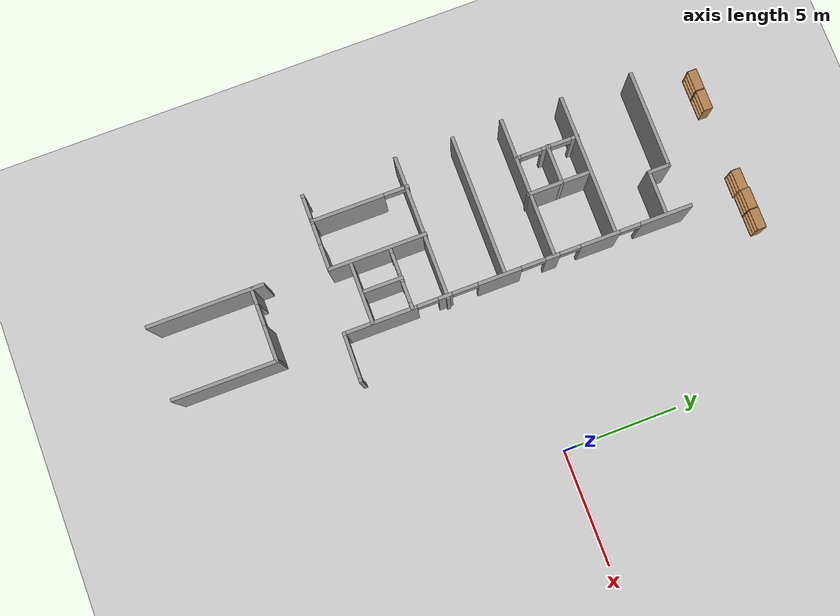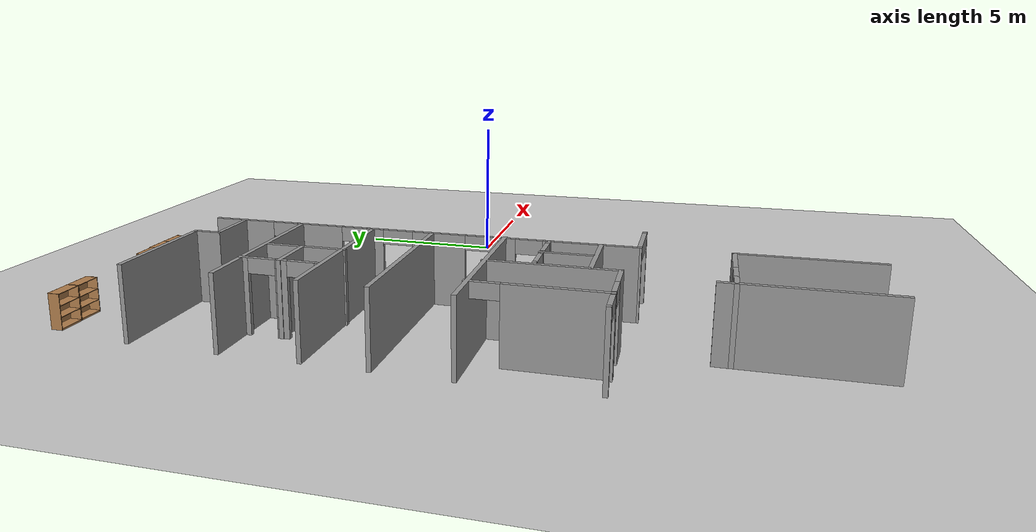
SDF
<sdf version="1.4">
 <world name="default">
  <model name="ground_plane">
   <static>1</static>
   <link name="link">
    <collision name="collision">
     <geometry><plane><normal>0 0 1</normal><size>100 100</size></plane></geometry>
    </collision>
    <visual name="visual">
     <cast_shadows>0</cast_shadows>
     <geometry><plane><normal>0 0 1</normal><size>100 100</size></plane></geometry>
     <material>
      <script><uri>file://media/materials/scripts/gazebo.material</uri><name>Gazebo/Grey</name></script>
     </material>
    </visual>
    <velocity_decay><linear>0</linear><angular>0</angular></velocity_decay>
   </link>
  </model>
  <model name="Shannon">
   <pose>-0.0406 0.68299 0 0 -0 0</pose>
   <link name="Wall_103">
    <pose>-12.639 -7.09751 0 0 -0 3.14159</pose>
    <visual name="Wall_103_Visual_0">
     <pose>-0.521613 0 1.25 0 -0 0</pose>
     <geometry><box><size>0.206775 0.15 2.5</size></box></geometry>
     <material>
      <script><uri>file://media/materials/scripts/gazebo.material</uri><name>Gazebo/Grey</name></script>
      <ambient>1 1 1 1</ambient>
     </material>
    </visual>
    <collision name="Wall_103_Collision_0">
     <geometry><box><size>0.206775 0.15 2.5</size></box></geometry>
     <pose>-0.521613 0 1.25 0 -0 0</pose>
    </collision>
    <visual name="Wall_103_Visual_1">
     <pose>0.553387 0 1.25 0 -0 0</pose>
     <geometry><box><size>0.143225 0.15 2.5</size></box></geometry>
     <material>
      <script><uri>file://media/materials/scripts/gazebo.material</uri><name>Gazebo/Grey</name></script>
      <ambient>1 1 1 1</ambient>
     </material>
    </visual>
    <collision name="Wall_103_Collision_1">
     <geometry><box><size>0.143225 0.15 2.5</size></box></geometry>
     <pose>0.553387 0 1.25 0 -0 0</pose>
    </collision>
    <visual name="Wall_103_Visual_2">
     <pose>0.031775 0 2.25 0 -0 0</pose>
     <geometry><box><size>0.9 0.15 0.5</size></box></geometry>
     <material>
      <script><uri>file://media/materials/scripts/gazebo.material</uri><name>Gazebo/Grey</name></script>
      <ambient>1 1 1 1</ambient>
     </material>
    </visual>
    <collision name="Wall_103_Collision_2">
     <geometry><box><size>0.9 0.15 0.5</size></box></geometry>
     <pose>0.031775 0 2.25 0 -0 0</pose>
    </collision>
    <velocity_decay><linear>0</linear><angular>0</angular></velocity_decay>
   </link>
   <link name="Wall_113">
    <pose>-6.33435 -7.42718 0 0 -0 3.12996</pose>
    <visual name="Wall_113_Visual_0">
     <pose>-0.982605 0 1.25 0 -0 0</pose>
     <geometry><box><size>0.174156 0.15 2.5</size></box></geometry>
     <material>
      <script><uri>file://media/materials/scripts/gazebo.material</uri><name>Gazebo/Grey</name></script>
      <ambient>1 1 1 1</ambient>
     </material>
    </visual>
    <collision name="Wall_113_Collision_0">
     <geometry><box><size>0.174156 0.15 2.5</size></box></geometry>
     <pose>-0.982605 0 1.25 0 -0 0</pose>
    </collision>
    <visual name="Wall_113_Visual_1">
     <pose>0.989375 0 1.25 0 -0 0</pose>
     <geometry><box><size>0.160617 0.15 2.5</size></box></geometry>
     <material>
      <script><uri>file://media/materials/scripts/gazebo.material</uri><name>Gazebo/Grey</name></script>
      <ambient>1 1 1 1</ambient>
     </material>
    </visual>
    <collision name="Wall_113_Collision_1">
     <geometry><box><size>0.160617 0.15 2.5</size></box></geometry>
     <pose>0.989375 0 1.25 0 -0 0</pose>
    </collision>
    <visual name="Wall_113_Visual_2">
     <pose>0.00677 0 2.25 0 -0 0</pose>
     <geometry><box><size>1.80459 0.15 0.5</size></box></geometry>
     <material>
      <script><uri>file://media/materials/scripts/gazebo.material</uri><name>Gazebo/Grey</name></script>
      <ambient>1 1 1 1</ambient>
     </material>
    </visual>
    <collision name="Wall_113_Collision_2">
     <geometry><box><size>1.80459 0.15 0.5</size></box></geometry>
     <pose>0.00677 0 2.25 0 -0 0</pose>
    </collision>
    <velocity_decay><linear>0</linear><angular>0</angular></velocity_decay>
   </link>
   <link name="Wall_24">
    <collision name="Wall_24_Collision">
     <geometry><box><size>5 0.15 2.5</size></box></geometry>
     <pose>0 0 1.25 0 -0 0</pose>
    </collision>
    <visual name="Wall_24_Visual">
     <pose>0 0 1.25 0 -0 0</pose>
     <geometry><box><size>5 0.15 2.5</size></box></geometry>
     <material>
      <script><uri>file://media/materials/scripts/gazebo.material</uri><name>Gazebo/Grey</name></script>
      <ambient>1 1 1 1</ambient>
     </material>
    </visual>
    <pose>-10.3358 -12.2303 0 0 -0 -1.5708</pose>
    <velocity_decay><linear>0</linear><angular>0</angular></velocity_decay>
   </link>
   <link name="Wall_26">
    <pose>-8.78595 -10.2837 0 0 -0 0</pose>
    <visual name="Wall_26_Visual_0">
     <pose>-1.2458 0 1.25 0 -0 0</pose>
     <geometry><box><size>0.7584 0.15 2.5</size></box></geometry>
     <material>
      <script><uri>file://media/materials/scripts/gazebo.material</uri><name>Gazebo/Grey</name></script>
      <ambient>1 1 1 1</ambient>
     </material>
    </visual>
    <collision name="Wall_26_Collision_0">
     <geometry><box><size>0.7584 0.15 2.5</size></box></geometry>
     <pose>-1.2458 0 1.25 0 -0 0</pose>
    </collision>
    <visual name="Wall_26_Visual_1">
     <pose>0.8292 0 1.25 0 -0 0</pose>
     <geometry><box><size>1.5916 0.15 2.5</size></box></geometry>
     <material>
      <script><uri>file://media/materials/scripts/gazebo.material</uri><name>Gazebo/Grey</name></script>
      <ambient>1 1 1 1</ambient>
     </material>
    </visual>
    <collision name="Wall_26_Collision_1">
     <geometry><box><size>1.5916 0.15 2.5</size></box></geometry>
     <pose>0.8292 0 1.25 0 -0 0</pose>
    </collision>
    <visual name="Wall_26_Visual_2">
     <pose>-0.4166 0 2.25 0 -0 0</pose>
     <geometry><box><size>0.9 0.15 0.5</size></box></geometry>
     <material>
      <script><uri>file://media/materials/scripts/gazebo.material</uri><name>Gazebo/Grey</name></script>
      <ambient>1 1 1 1</ambient>
     </material>
    </visual>
    <collision name="Wall_26_Collision_2">
     <geometry><box><size>0.9 0.15 0.5</size></box></geometry>
     <pose>-0.4166 0 2.25 0 -0 0</pose>
    </collision>
    <velocity_decay><linear>0</linear><angular>0</angular></velocity_decay>
   </link>
   <link name="Wall_27">
    <collision name="Wall_27_Collision">
     <geometry><box><size>4.5 0.15 2.5</size></box></geometry>
     <pose>0 0 1.25 0 -0 0</pose>
    </collision>
    <visual name="Wall_27_Visual">
     <pose>0 0 1.25 0 -0 0</pose>
     <geometry><box><size>4.5 0.15 2.5</size></box></geometry>
     <material>
      <script><uri>file://media/materials/scripts/gazebo.material</uri><name>Gazebo/Grey</name></script>
      <ambient>1 1 1 1</ambient>
     </material>
    </visual>
    <pose>-7.23595 -12.4587 0 0 -0 -1.5708</pose>
    <velocity_decay><linear>0</linear><angular>0</angular></velocity_decay>
   </link>
   <link name="Wall_41">
    <collision name="Wall_41_Collision">
     <geometry><box><size>4.25 0.15 2.5</size></box></geometry>
     <pose>0 0 1.25 0 -0 0</pose>
    </collision>
    <visual name="Wall_41_Visual">
     <pose>0 0 1.25 0 -0 0</pose>
     <geometry><box><size>4.25 0.15 2.5</size></box></geometry>
     <material>
      <script><uri>file://media/materials/scripts/gazebo.material</uri><name>Gazebo/Grey</name></script>
      <ambient>1 1 1 1</ambient>
     </material>
    </visual>
    <pose>-11.2467 7.24934 0 0 -0 0</pose>
    <velocity_decay><linear>0</linear><angular>0</angular></velocity_decay>
   </link>
   <link name="Wall_42">
    <collision name="Wall_42_Collision">
     <geometry><box><size>1 0.15 2.5</size></box></geometry>
     <pose>0 0 1.25 0 -0 0</pose>
    </collision>
    <visual name="Wall_42_Visual">
     <pose>0 0 1.25 0 -0 0</pose>
     <geometry><box><size>1 0.15 2.5</size></box></geometry>
     <material>
      <script><uri>file://media/materials/scripts/gazebo.material</uri><name>Gazebo/Grey</name></script>
      <ambient>1 1 1 1</ambient>
     </material>
    </visual>
    <pose>-9.19666 6.82435 0 0 -0 -1.5708</pose>
    <velocity_decay><linear>0</linear><angular>0</angular></velocity_decay>
   </link>
   <link name="Wall_43">
    <collision name="Wall_43_Collision">
     <geometry><box><size>2 0.15 2.5</size></box></geometry>
     <pose>0 0 1.25 0 -0 0</pose>
    </collision>
    <visual name="Wall_43_Visual">
     <pose>0 0 1.25 0 -0 0</pose>
     <geometry><box><size>2 0.15 2.5</size></box></geometry>
     <material>
      <script><uri>file://media/materials/scripts/gazebo.material</uri><name>Gazebo/Grey</name></script>
      <ambient>1 1 1 1</ambient>
     </material>
    </visual>
    <pose>-8.27166 6.39934 0 0 -0 0</pose>
    <velocity_decay><linear>0</linear><angular>0</angular></velocity_decay>
   </link>
   <link name="Wall_47">
    <pose>-7.32897 0.009389 0 0 -0 -1.5708</pose>
    <visual name="Wall_47_Visual_0">
     <pose>-6.3818 0 1.25 0 -0 0</pose>
     <geometry><box><size>2.2364 0.15 2.5</size></box></geometry>
     <material>
      <script><uri>file://media/materials/scripts/gazebo.material</uri><name>Gazebo/Grey</name></script>
      <ambient>1 1 1 1</ambient>
     </material>
    </visual>
    <collision name="Wall_47_Collision_0">
     <geometry><box><size>2.2364 0.15 2.5</size></box></geometry>
     <pose>-6.3818 0 1.25 0 -0 0</pose>
    </collision>
    <visual name="Wall_47_Visual_1">
     <pose>-3.51711 0 1.25 0 -0 0</pose>
     <geometry><box><size>1.69298 0.15 2.5</size></box></geometry>
     <material>
      <script><uri>file://media/materials/scripts/gazebo.material</uri><name>Gazebo/Grey</name></script>
      <ambient>1 1 1 1</ambient>
     </material>
    </visual>
    <collision name="Wall_47_Collision_1">
     <geometry><box><size>1.69298 0.15 2.5</size></box></geometry>
     <pose>-3.51711 0 1.25 0 -0 0</pose>
    </collision>
    <visual name="Wall_47_Visual_2">
     <pose>-1.46309 0 1.25 0 -0 0</pose>
     <geometry><box><size>0.615055 0.15 2.5</size></box></geometry>
     <material>
      <script><uri>file://media/materials/scripts/gazebo.material</uri><name>Gazebo/Grey</name></script>
      <ambient>1 1 1 1</ambient>
     </material>
    </visual>
    <collision name="Wall_47_Collision_2">
     <geometry><box><size>0.615055 0.15 2.5</size></box></geometry>
     <pose>-1.46309 0 1.25 0 -0 0</pose>
    </collision>
    <visual name="Wall_47_Visual_3">
     <pose>0.809496 0 1.25 0 -0 0</pose>
     <geometry><box><size>1.85254 0.15 2.5</size></box></geometry>
     <material>
      <script><uri>file://media/materials/scripts/gazebo.material</uri><name>Gazebo/Grey</name></script>
      <ambient>1 1 1 1</ambient>
     </material>
    </visual>
    <collision name="Wall_47_Collision_3">
     <geometry><box><size>1.85254 0.15 2.5</size></box></geometry>
     <pose>0.809496 0 1.25 0 -0 0</pose>
    </collision>
    <visual name="Wall_47_Visual_4">
     <pose>3.13991 0 1.25 0 -0 0</pose>
     <geometry><box><size>0.591924 0.15 2.5</size></box></geometry>
     <material>
      <script><uri>file://media/materials/scripts/gazebo.material</uri><name>Gazebo/Grey</name></script>
      <ambient>1 1 1 1</ambient>
     </material>
    </visual>
    <collision name="Wall_47_Collision_4">
     <geometry><box><size>0.591924 0.15 2.5</size></box></geometry>
     <pose>3.13991 0 1.25 0 -0 0</pose>
    </collision>
    <visual name="Wall_47_Visual_5">
     <pose>5.91793 0 1.25 0 -0 0</pose>
     <geometry><box><size>3.16413 0.15 2.5</size></box></geometry>
     <material>
      <script><uri>file://media/materials/scripts/gazebo.material</uri><name>Gazebo/Grey</name></script>
      <ambient>1 1 1 1</ambient>
     </material>
    </visual>
    <collision name="Wall_47_Collision_5">
     <geometry><box><size>3.16413 0.15 2.5</size></box></geometry>
     <pose>5.91793 0 1.25 0 -0 0</pose>
    </collision>
    <visual name="Wall_47_Visual_6">
     <pose>-4.8136 0 2.25 0 -0 0</pose>
     <geometry><box><size>0.9 0.15 0.5</size></box></geometry>
     <material>
      <script><uri>file://media/materials/scripts/gazebo.material</uri><name>Gazebo/Grey</name></script>
      <ambient>1 1 1 1</ambient>
     </material>
    </visual>
    <collision name="Wall_47_Collision_6">
     <geometry><box><size>0.9 0.15 0.5</size></box></geometry>
     <pose>-4.8136 0 2.25 0 -0 0</pose>
    </collision>
    <visual name="Wall_47_Visual_7">
     <pose>-2.22061 0 2.25 0 -0 0</pose>
     <geometry><box><size>0.9 0.15 0.5</size></box></geometry>
     <material>
      <script><uri>file://media/materials/scripts/gazebo.material</uri><name>Gazebo/Grey</name></script>
      <ambient>1 1 1 1</ambient>
     </material>
    </visual>
    <collision name="Wall_47_Collision_7">
     <geometry><box><size>0.9 0.15 0.5</size></box></geometry>
     <pose>-2.22061 0 2.25 0 -0 0</pose>
    </collision>
    <visual name="Wall_47_Visual_8">
     <pose>-0.636167 0 2.25 0 -0 0</pose>
     <geometry><box><size>1.03878 0.15 0.5</size></box></geometry>
     <material>
      <script><uri>file://media/materials/scripts/gazebo.material</uri><name>Gazebo/Grey</name></script>
      <ambient>1 1 1 1</ambient>
     </material>
    </visual>
    <collision name="Wall_47_Collision_8">
     <geometry><box><size>1.03878 0.15 0.5</size></box></geometry>
     <pose>-0.636167 0 2.25 0 -0 0</pose>
    </collision>
    <visual name="Wall_47_Visual_9">
     <pose>2.28986 0 2.25 0 -0 0</pose>
     <geometry><box><size>1.10817 0.15 0.5</size></box></geometry>
     <material>
      <script><uri>file://media/materials/scripts/gazebo.material</uri><name>Gazebo/Grey</name></script>
      <ambient>1 1 1 1</ambient>
     </material>
    </visual>
    <collision name="Wall_47_Collision_9">
     <geometry><box><size>1.10817 0.15 0.5</size></box></geometry>
     <pose>2.28986 0 2.25 0 -0 0</pose>
    </collision>
    <visual name="Wall_47_Visual_10">
     <pose>3.88587 0 2.25 0 -0 0</pose>
     <geometry><box><size>0.9 0.15 0.5</size></box></geometry>
     <material>
      <script><uri>file://media/materials/scripts/gazebo.material</uri><name>Gazebo/Grey</name></script>
      <ambient>1 1 1 1</ambient>
     </material>
    </visual>
    <collision name="Wall_47_Collision_10">
     <geometry><box><size>0.9 0.15 0.5</size></box></geometry>
     <pose>3.88587 0 2.25 0 -0 0</pose>
    </collision>
    <velocity_decay><linear>0</linear><angular>0</angular></velocity_decay>
   </link>
   <link name="Wall_49">
    <collision name="Wall_49_Collision">
     <geometry><box><size>6 0.15 2.5</size></box></geometry>
     <pose>0 0 1.25 0 -0 0</pose>
    </collision>
    <visual name="Wall_49_Visual">
     <pose>0 0 1.25 0 -0 0</pose>
     <geometry><box><size>6 0.15 2.5</size></box></geometry>
     <material>
      <script><uri>file://media/materials/scripts/gazebo.material</uri><name>Gazebo/Grey</name></script>
      <ambient>1 1 1 1</ambient>
     </material>
    </visual>
    <pose>-10.3948 4.1961 0 0 -0 0</pose>
    <velocity_decay><linear>0</linear><angular>0</angular></velocity_decay>
   </link>
   <link name="Wall_51">
    <collision name="Wall_51_Collision">
     <geometry><box><size>6 0.15 2.5</size></box></geometry>
     <pose>0 0 1.25 0 -0 0</pose>
    </collision>
    <visual name="Wall_51_Visual">
     <pose>0 0 1.25 0 -0 0</pose>
     <geometry><box><size>6 0.15 2.5</size></box></geometry>
     <material>
      <script><uri>file://media/materials/scripts/gazebo.material</uri><name>Gazebo/Grey</name></script>
      <ambient>1 1 1 1</ambient>
     </material>
    </visual>
    <pose>-10.3717 1.55922 0 0 -0 0</pose>
    <velocity_decay><linear>0</linear><angular>0</angular></velocity_decay>
   </link>
   <link name="Wall_53">
    <collision name="Wall_53_Collision">
     <geometry><box><size>6 0.15 2.5</size></box></geometry>
     <pose>0 0 1.25 0 -0 0</pose>
    </collision>
    <visual name="Wall_53_Visual">
     <pose>0 0 1.25 0 -0 0</pose>
     <geometry><box><size>6 0.15 2.5</size></box></geometry>
     <material>
      <script><uri>file://media/materials/scripts/gazebo.material</uri><name>Gazebo/Grey</name></script>
      <ambient>1 1 1 1</ambient>
     </material>
    </visual>
    <pose>-10.3948 -0.568801 0 0 -0 0</pose>
    <velocity_decay><linear>0</linear><angular>0</angular></velocity_decay>
   </link>
   <link name="Wall_55">
    <collision name="Wall_55_Collision">
     <geometry><box><size>6.25 0.15 2.5</size></box></geometry>
     <pose>0 0 1.25 0 -0 0</pose>
    </collision>
    <visual name="Wall_55_Visual">
     <pose>0 0 1.25 0 -0 0</pose>
     <geometry><box><size>6.25 0.15 2.5</size></box></geometry>
     <material>
      <script><uri>file://media/materials/scripts/gazebo.material</uri><name>Gazebo/Grey</name></script>
      <ambient>1 1 1 1</ambient>
     </material>
    </visual>
    <pose>-10.2929 -3.04378 0 0 -0 0</pose>
    <velocity_decay><linear>0</linear><angular>0</angular></velocity_decay>
   </link>
   <link name="Wall_57">
    <collision name="Wall_57_Collision">
     <geometry><box><size>4.25 0.15 2.5</size></box></geometry>
     <pose>0 0 1.25 0 -0 0</pose>
    </collision>
    <visual name="Wall_57_Visual">
     <pose>0 0 1.25 0 -0 0</pose>
     <geometry><box><size>4.25 0.15 2.5</size></box></geometry>
     <material>
      <script><uri>file://media/materials/scripts/gazebo.material</uri><name>Gazebo/Grey</name></script>
      <ambient>1 1 1 1</ambient>
     </material>
    </visual>
    <pose>-9.98899 -5.04751 0 0 -0 -1.5708</pose>
    <velocity_decay><linear>0</linear><angular>0</angular></velocity_decay>
   </link>
   <link name="Wall_58">
    <pose>-11.039 -7.09751 0 0 -0 3.14159</pose>
    <visual name="Wall_58_Visual_0">
     <pose>-0.54919 0 1.25 0 -0 0</pose>
     <geometry><box><size>1.15162 0.15 2.5</size></box></geometry>
     <material>
      <script><uri>file://media/materials/scripts/gazebo.material</uri><name>Gazebo/Grey</name></script>
      <ambient>1 1 1 1</ambient>
     </material>
    </visual>
    <collision name="Wall_58_Collision_0">
     <geometry><box><size>1.15162 0.15 2.5</size></box></geometry>
     <pose>-0.54919 0 1.25 0 -0 0</pose>
    </collision>
    <visual name="Wall_58_Visual_1">
     <pose>1.02581 0 1.25 0 -0 0</pose>
     <geometry><box><size>0.19838 0.15 2.5</size></box></geometry>
     <material>
      <script><uri>file://media/materials/scripts/gazebo.material</uri><name>Gazebo/Grey</name></script>
      <ambient>1 1 1 1</ambient>
     </material>
    </visual>
    <collision name="Wall_58_Collision_1">
     <geometry><box><size>0.19838 0.15 2.5</size></box></geometry>
     <pose>1.02581 0 1.25 0 -0 0</pose>
    </collision>
    <visual name="Wall_58_Visual_2">
     <pose>0.47662 0 2.25 0 -0 0</pose>
     <geometry><box><size>0.9 0.15 0.5</size></box></geometry>
     <material>
      <script><uri>file://media/materials/scripts/gazebo.material</uri><name>Gazebo/Grey</name></script>
      <ambient>1 1 1 1</ambient>
     </material>
    </visual>
    <collision name="Wall_58_Collision_2">
     <geometry><box><size>0.9 0.15 0.5</size></box></geometry>
     <pose>0.47662 0 2.25 0 -0 0</pose>
    </collision>
    <velocity_decay><linear>0</linear><angular>0</angular></velocity_decay>
   </link>
   <link name="Wall_59">
    <pose>-12.089 -5.04751 0 0 -0 1.5708</pose>
    <visual name="Wall_59_Visual_0">
     <pose>-0.540067 0 1.25 0 -0 0</pose>
     <geometry><box><size>3.16987 0.15 2.5</size></box></geometry>
     <material>
      <script><uri>file://media/materials/scripts/gazebo.material</uri><name>Gazebo/Grey</name></script>
      <ambient>1 1 1 1</ambient>
     </material>
    </visual>
    <collision name="Wall_59_Collision_0">
     <geometry><box><size>3.16987 0.15 2.5</size></box></geometry>
     <pose>-0.540067 0 1.25 0 -0 0</pose>
    </collision>
    <visual name="Wall_59_Visual_1">
     <pose>2.03493 0 1.25 0 -0 0</pose>
     <geometry><box><size>0.180134 0.15 2.5</size></box></geometry>
     <material>
      <script><uri>file://media/materials/scripts/gazebo.material</uri><name>Gazebo/Grey</name></script>
      <ambient>1 1 1 1</ambient>
     </material>
    </visual>
    <collision name="Wall_59_Collision_1">
     <geometry><box><size>0.180134 0.15 2.5</size></box></geometry>
     <pose>2.03493 0 1.25 0 -0 0</pose>
    </collision>
    <visual name="Wall_59_Visual_2">
     <pose>1.49487 0 2.25 0 -0 0</pose>
     <geometry><box><size>0.9 0.15 0.5</size></box></geometry>
     <material>
      <script><uri>file://media/materials/scripts/gazebo.material</uri><name>Gazebo/Grey</name></script>
      <ambient>1 1 1 1</ambient>
     </material>
    </visual>
    <collision name="Wall_59_Collision_2">
     <geometry><box><size>0.9 0.15 0.5</size></box></geometry>
     <pose>1.49487 0 2.25 0 -0 0</pose>
    </collision>
    <velocity_decay><linear>0</linear><angular>0</angular></velocity_decay>
   </link>
   <link name="Wall_61">
    <collision name="Wall_61_Collision">
     <geometry><box><size>2.75 0.15 2.5</size></box></geometry>
     <pose>0 0 1.25 0 -0 0</pose>
    </collision>
    <visual name="Wall_61_Visual">
     <pose>0 0 1.25 0 -0 0</pose>
     <geometry><box><size>2.75 0.15 2.5</size></box></geometry>
     <material>
      <script><uri>file://media/materials/scripts/gazebo.material</uri><name>Gazebo/Grey</name></script>
      <ambient>1 1 1 1</ambient>
     </material>
    </visual>
    <pose>-8.66586 -6.21267 0 0 -0 0</pose>
    <velocity_decay><linear>0</linear><angular>0</angular></velocity_decay>
   </link>
   <link name="Wall_63">
    <pose>-8.66586 -4.52414 0 0 -0 0</pose>
    <visual name="Wall_63_Visual_0">
     <pose>-1.21554 0 1.25 0 -0 0</pose>
     <geometry><box><size>0.318918 0.15 2.5</size></box></geometry>
     <material>
      <script><uri>file://media/materials/scripts/gazebo.material</uri><name>Gazebo/Grey</name></script>
      <ambient>1 1 1 1</ambient>
     </material>
    </visual>
    <collision name="Wall_63_Collision_0">
     <geometry><box><size>0.318918 0.15 2.5</size></box></geometry>
     <pose>-1.21554 0 1.25 0 -0 0</pose>
    </collision>
    <visual name="Wall_63_Visual_1">
     <pose>0.018445 0 1.25 0 -0 0</pose>
     <geometry><box><size>0.349053 0.15 2.5</size></box></geometry>
     <material>
      <script><uri>file://media/materials/scripts/gazebo.material</uri><name>Gazebo/Grey</name></script>
      <ambient>1 1 1 1</ambient>
     </material>
    </visual>
    <collision name="Wall_63_Collision_1">
     <geometry><box><size>0.349053 0.15 2.5</size></box></geometry>
     <pose>0.018445 0 1.25 0 -0 0</pose>
    </collision>
    <visual name="Wall_63_Visual_2">
     <pose>1.23399 0 1.25 0 -0 0</pose>
     <geometry><box><size>0.282029 0.15 2.5</size></box></geometry>
     <material>
      <script><uri>file://media/materials/scripts/gazebo.material</uri><name>Gazebo/Grey</name></script>
      <ambient>1 1 1 1</ambient>
     </material>
    </visual>
    <collision name="Wall_63_Collision_2">
     <geometry><box><size>0.282029 0.15 2.5</size></box></geometry>
     <pose>1.23399 0 1.25 0 -0 0</pose>
    </collision>
    <visual name="Wall_63_Visual_3">
     <pose>-0.606082 0 2.25 0 -0 0</pose>
     <geometry><box><size>0.9 0.15 0.5</size></box></geometry>
     <material>
      <script><uri>file://media/materials/scripts/gazebo.material</uri><name>Gazebo/Grey</name></script>
      <ambient>1 1 1 1</ambient>
     </material>
    </visual>
    <collision name="Wall_63_Collision_3">
     <geometry><box><size>0.9 0.15 0.5</size></box></geometry>
     <pose>-0.606082 0 2.25 0 -0 0</pose>
    </collision>
    <visual name="Wall_63_Visual_4">
     <pose>0.642971 0 2.25 0 -0 0</pose>
     <geometry><box><size>0.9 0.15 0.5</size></box></geometry>
     <material>
      <script><uri>file://media/materials/scripts/gazebo.material</uri><name>Gazebo/Grey</name></script>
      <ambient>1 1 1 1</ambient>
     </material>
    </visual>
    <collision name="Wall_63_Collision_4">
     <geometry><box><size>0.9 0.15 0.5</size></box></geometry>
     <pose>0.642971 0 2.25 0 -0 0</pose>
    </collision>
    <velocity_decay><linear>0</linear><angular>0</angular></velocity_decay>
   </link>
   <link name="Wall_65">
    <collision name="Wall_65_Collision">
     <geometry><box><size>1.75 0.15 2.5</size></box></geometry>
     <pose>0 0 1.25 0 -0 0</pose>
    </collision>
    <visual name="Wall_65_Visual">
     <pose>0 0 1.25 0 -0 0</pose>
     <geometry><box><size>1.75 0.15 2.5</size></box></geometry>
     <material>
      <script><uri>file://media/materials/scripts/gazebo.material</uri><name>Gazebo/Grey</name></script>
      <ambient>1 1 1 1</ambient>
     </material>
    </visual>
    <pose>-8.64741 -5.301 0 0 -0 -1.5708</pose>
    <velocity_decay><linear>0</linear><angular>0</angular></velocity_decay>
   </link>
   <link name="Wall_67">
    <pose>-11.6313 2.91924 0 0 -0 -1.5708</pose>
    <visual name="Wall_67_Visual_0">
     <pose>-1.20398 0 1.25 0 -0 0</pose>
     <geometry><box><size>0.342049 0.15 2.5</size></box></geometry>
     <material>
      <script><uri>file://media/materials/scripts/gazebo.material</uri><name>Gazebo/Grey</name></script>
      <ambient>1 1 1 1</ambient>
     </material>
    </visual>
    <collision name="Wall_67_Collision_0">
     <geometry><box><size>0.342049 0.15 2.5</size></box></geometry>
     <pose>-1.20398 0 1.25 0 -0 0</pose>
    </collision>
    <visual name="Wall_67_Visual_1">
     <pose>0.064706 0 1.25 0 -0 0</pose>
     <geometry><box><size>0.395314 0.15 2.5</size></box></geometry>
     <material>
      <script><uri>file://media/materials/scripts/gazebo.material</uri><name>Gazebo/Grey</name></script>
      <ambient>1 1 1 1</ambient>
     </material>
    </visual>
    <collision name="Wall_67_Collision_1">
     <geometry><box><size>0.395314 0.15 2.5</size></box></geometry>
     <pose>0.064706 0 1.25 0 -0 0</pose>
    </collision>
    <visual name="Wall_67_Visual_2">
     <pose>1.26868 0 1.25 0 -0 0</pose>
     <geometry><box><size>0.212637 0.15 2.5</size></box></geometry>
     <material>
      <script><uri>file://media/materials/scripts/gazebo.material</uri><name>Gazebo/Grey</name></script>
      <ambient>1 1 1 1</ambient>
     </material>
    </visual>
    <collision name="Wall_67_Collision_2">
     <geometry><box><size>0.212637 0.15 2.5</size></box></geometry>
     <pose>1.26868 0 1.25 0 -0 0</pose>
    </collision>
    <visual name="Wall_67_Visual_3">
     <pose>-0.582951 0 2.25 0 -0 0</pose>
     <geometry><box><size>0.9 0.15 0.5</size></box></geometry>
     <material>
      <script><uri>file://media/materials/scripts/gazebo.material</uri><name>Gazebo/Grey</name></script>
      <ambient>1 1 1 1</ambient>
     </material>
    </visual>
    <collision name="Wall_67_Collision_3">
     <geometry><box><size>0.9 0.15 0.5</size></box></geometry>
     <pose>-0.582951 0 2.25 0 -0 0</pose>
    </collision>
    <visual name="Wall_67_Visual_4">
     <pose>0.712363 0 2.25 0 -0 0</pose>
     <geometry><box><size>0.9 0.15 0.5</size></box></geometry>
     <material>
      <script><uri>file://media/materials/scripts/gazebo.material</uri><name>Gazebo/Grey</name></script>
      <ambient>1 1 1 1</ambient>
     </material>
    </visual>
    <collision name="Wall_67_Collision_4">
     <geometry><box><size>0.9 0.15 0.5</size></box></geometry>
     <pose>0.712363 0 2.25 0 -0 0</pose>
    </collision>
    <velocity_decay><linear>0</linear><angular>0</angular></velocity_decay>
   </link>
   <link name="Wall_69">
    <collision name="Wall_69_Collision">
     <geometry><box><size>1.75 0.15 2.5</size></box></geometry>
     <pose>0 0 1.25 0 -0 0</pose>
    </collision>
    <visual name="Wall_69_Visual">
     <pose>0 0 1.25 0 -0 0</pose>
     <geometry><box><size>1.75 0.15 2.5</size></box></geometry>
     <material>
      <script><uri>file://media/materials/scripts/gazebo.material</uri><name>Gazebo/Grey</name></script>
      <ambient>1 1 1 1</ambient>
     </material>
    </visual>
    <pose>-10.8544 2.92392 0 0 -0 0</pose>
    <velocity_decay><linear>0</linear><angular>0</angular></velocity_decay>
   </link>
   <link name="Wall_71">
    <collision name="Wall_71_Collision">
     <geometry><box><size>2.75 0.15 2.5</size></box></geometry>
     <pose>0 0 1.25 0 -0 0</pose>
    </collision>
    <visual name="Wall_71_Visual">
     <pose>0 0 1.25 0 -0 0</pose>
     <geometry><box><size>2.75 0.15 2.5</size></box></geometry>
     <material>
      <script><uri>file://media/materials/scripts/gazebo.material</uri><name>Gazebo/Grey</name></script>
      <ambient>1 1 1 1</ambient>
     </material>
    </visual>
    <pose>-10.0584 2.80358 0 0 -0 -1.5708</pose>
    <velocity_decay><linear>0</linear><angular>0</angular></velocity_decay>
   </link>
   <static>1</static>
  </model>
  <model name="bookshelf_5">
   <static>1</static>
   <link name="link">
    <inertial><mass>1</mass></inertial>
    <collision name="back">
     <pose>0 0.005 0.6 0 -0 0</pose>
     <geometry><box><size>0.9 0.01 1.2</size></box></geometry>
    </collision>
    <visual name="visual1">
     <pose>0 0.005 0.6 0 -0 0</pose>
     <geometry><box><size>0.9 0.01 1.2</size></box></geometry>
     <material>
      <script><uri>file://media/materials/scripts/gazebo.material</uri><name>Gazebo/Wood</name></script>
     </material>
    </visual>
    <collision name="left_side">
     <pose>0.45 -0.195 0.6 0 -0 0</pose>
     <geometry><box><size>0.02 0.4 1.2</size></box></geometry>
    </collision>
    <visual name="visual2">
     <pose>0.45 -0.195 0.6 0 -0 0</pose>
     <geometry><box><size>0.02 0.4 1.2</size></box></geometry>
     <material>
      <script><uri>file://media/materials/scripts/gazebo.material</uri><name>Gazebo/Wood</name></script>
     </material>
    </visual>
    <collision name="right_side">
     <pose>-0.45 -0.195 0.6 0 -0 0</pose>
     <geometry><box><size>0.02 0.4 1.2</size></box></geometry>
    </collision>
    <visual name="visual3">
     <pose>-0.45 -0.195 0.6 0 -0 0</pose>
     <geometry><box><size>0.02 0.4 1.2</size></box></geometry>
     <material>
      <script><uri>file://media/materials/scripts/gazebo.material</uri><name>Gazebo/Wood</name></script>
     </material>
    </visual>
    <collision name="bottom">
     <pose>0 -0.195 0.03 0 -0 0</pose>
     <geometry><box><size>0.88 0.4 0.06</size></box></geometry>
    </collision>
    <visual name="visual4">
     <pose>0 -0.195 0.03 0 -0 0</pose>
     <geometry><box><size>0.88 0.4 0.06</size></box></geometry>
     <material>
      <script><uri>file://media/materials/scripts/gazebo.material</uri><name>Gazebo/Wood</name></script>
     </material>
    </visual>
    <collision name="top">
     <pose>0 -0.195 1.19 0 -0 0</pose>
     <geometry><box><size>0.88 0.4 0.02</size></box></geometry>
    </collision>
    <visual name="visual5">
     <pose>0 -0.195 1.19 0 -0 0</pose>
     <geometry><box><size>0.88 0.4 0.02</size></box></geometry>
     <material>
      <script><uri>file://media/materials/scripts/gazebo.material</uri><name>Gazebo/Wood</name></script>
     </material>
    </visual>
    <collision name="low_shelf">
     <pose>0 -0.195 0.43 0 -0 0</pose>
     <geometry><box><size>0.88 0.4 0.02</size></box></geometry>
    </collision>
    <visual name="visual6">
     <pose>0 -0.195 0.43 0 -0 0</pose>
     <geometry><box><size>0.88 0.4 0.02</size></box></geometry>
     <material>
      <script><uri>file://media/materials/scripts/gazebo.material</uri><name>Gazebo/Wood</name></script>
     </material>
    </visual>
    <collision name="high_shelf">
     <pose>0 -0.195 0.8 0 -0 0</pose>
     <geometry><box><size>0.88 0.4 0.02</size></box></geometry>
    </collision>
    <visual name="visual7">
     <pose>0 -0.195 0.8 0 -0 0</pose>
     <geometry><box><size>0.88 0.4 0.02</size></box></geometry>
     <material>
      <script><uri>file://media/materials/scripts/gazebo.material</uri><name>Gazebo/Wood</name></script>
     </material>
    </visual>
    <velocity_decay><linear>0</linear><angular>0</angular></velocity_decay>
   </link>
   <pose>-12.5379 10.9551 0 0 -0 0</pose>
  </model>
  <model name="bookshelf_6">
   <static>1</static>
   <link name="link">
    <inertial><mass>1</mass></inertial>
    <collision name="back">
     <pose>0 0.005 0.6 0 -0 0</pose>
     <geometry><box><size>0.9 0.01 1.2</size></box></geometry>
    </collision>
    <visual name="visual1">
     <pose>0 0.005 0.6 0 -0 0</pose>
     <geometry><box><size>0.9 0.01 1.2</size></box></geometry>
     <material>
      <script><uri>file://media/materials/scripts/gazebo.material</uri><name>Gazebo/Wood</name></script>
     </material>
    </visual>
    <collision name="left_side">
     <pose>0.45 -0.195 0.6 0 -0 0</pose>
     <geometry><box><size>0.02 0.4 1.2</size></box></geometry>
    </collision>
    <visual name="visual2">
     <pose>0.45 -0.195 0.6 0 -0 0</pose>
     <geometry><box><size>0.02 0.4 1.2</size></box></geometry>
     <material>
      <script><uri>file://media/materials/scripts/gazebo.material</uri><name>Gazebo/Wood</name></script>
     </material>
    </visual>
    <collision name="right_side">
     <pose>-0.45 -0.195 0.6 0 -0 0</pose>
     <geometry><box><size>0.02 0.4 1.2</size></box></geometry>
    </collision>
    <visual name="visual3">
     <pose>-0.45 -0.195 0.6 0 -0 0</pose>
     <geometry><box><size>0.02 0.4 1.2</size></box></geometry>
     <material>
      <script><uri>file://media/materials/scripts/gazebo.material</uri><name>Gazebo/Wood</name></script>
     </material>
    </visual>
    <collision name="bottom">
     <pose>0 -0.195 0.03 0 -0 0</pose>
     <geometry><box><size>0.88 0.4 0.06</size></box></geometry>
    </collision>
    <visual name="visual4">
     <pose>0 -0.195 0.03 0 -0 0</pose>
     <geometry><box><size>0.88 0.4 0.06</size></box></geometry>
     <material>
      <script><uri>file://media/materials/scripts/gazebo.material</uri><name>Gazebo/Wood</name></script>
     </material>
    </visual>
    <collision name="top">
     <pose>0 -0.195 1.19 0 -0 0</pose>
     <geometry><box><size>0.88 0.4 0.02</size></box></geometry>
    </collision>
    <visual name="visual5">
     <pose>0 -0.195 1.19 0 -0 0</pose>
     <geometry><box><size>0.88 0.4 0.02</size></box></geometry>
     <material>
      <script><uri>file://media/materials/scripts/gazebo.material</uri><name>Gazebo/Wood</name></script>
     </material>
    </visual>
    <collision name="low_shelf">
     <pose>0 -0.195 0.43 0 -0 0</pose>
     <geometry><box><size>0.88 0.4 0.02</size></box></geometry>
    </collision>
    <visual name="visual6">
     <pose>0 -0.195 0.43 0 -0 0</pose>
     <geometry><box><size>0.88 0.4 0.02</size></box></geometry>
     <material>
      <script><uri>file://media/materials/scripts/gazebo.material</uri><name>Gazebo/Wood</name></script>
     </material>
    </visual>
    <collision name="high_shelf">
     <pose>0 -0.195 0.8 0 -0 0</pose>
     <geometry><box><size>0.88 0.4 0.02</size></box></geometry>
    </collision>
    <visual name="visual7">
     <pose>0 -0.195 0.8 0 -0 0</pose>
     <geometry><box><size>0.88 0.4 0.02</size></box></geometry>
     <material>
      <script><uri>file://media/materials/scripts/gazebo.material</uri><name>Gazebo/Wood</name></script>
     </material>
    </visual>
    <velocity_decay><linear>0</linear><angular>0</angular></velocity_decay>
   </link>
   <pose>-11.605 10.9577 0 0 -0 0</pose>
  </model>
  <model name="bookshelf_7">
   <static>1</static>
   <link name="link">
    <inertial><mass>1</mass></inertial>
    <collision name="back">
     <pose>0 0.005 0.6 0 -0 0</pose>
     <geometry><box><size>0.9 0.01 1.2</size></box></geometry>
    </collision>
    <visual name="visual1">
     <pose>0 0.005 0.6 0 -0 0</pose>
     <geometry><box><size>0.9 0.01 1.2</size></box></geometry>
     <material>
      <script><uri>file://media/materials/scripts/gazebo.material</uri><name>Gazebo/Wood</name></script>
     </material>
    </visual>
    <collision name="left_side">
     <pose>0.45 -0.195 0.6 0 -0 0</pose>
     <geometry><box><size>0.02 0.4 1.2</size></box></geometry>
    </collision>
    <visual name="visual2">
     <pose>0.45 -0.195 0.6 0 -0 0</pose>
     <geometry><box><size>0.02 0.4 1.2</size></box></geometry>
     <material>
      <script><uri>file://media/materials/scripts/gazebo.material</uri><name>Gazebo/Wood</name></script>
     </material>
    </visual>
    <collision name="right_side">
     <pose>-0.45 -0.195 0.6 0 -0 0</pose>
     <geometry><box><size>0.02 0.4 1.2</size></box></geometry>
    </collision>
    <visual name="visual3">
     <pose>-0.45 -0.195 0.6 0 -0 0</pose>
     <geometry><box><size>0.02 0.4 1.2</size></box></geometry>
     <material>
      <script><uri>file://media/materials/scripts/gazebo.material</uri><name>Gazebo/Wood</name></script>
     </material>
    </visual>
    <collision name="bottom">
     <pose>0 -0.195 0.03 0 -0 0</pose>
     <geometry><box><size>0.88 0.4 0.06</size></box></geometry>
    </collision>
    <visual name="visual4">
     <pose>0 -0.195 0.03 0 -0 0</pose>
     <geometry><box><size>0.88 0.4 0.06</size></box></geometry>
     <material>
      <script><uri>file://media/materials/scripts/gazebo.material</uri><name>Gazebo/Wood</name></script>
     </material>
    </visual>
    <collision name="top">
     <pose>0 -0.195 1.19 0 -0 0</pose>
     <geometry><box><size>0.88 0.4 0.02</size></box></geometry>
    </collision>
    <visual name="visual5">
     <pose>0 -0.195 1.19 0 -0 0</pose>
     <geometry><box><size>0.88 0.4 0.02</size></box></geometry>
     <material>
      <script><uri>file://media/materials/scripts/gazebo.material</uri><name>Gazebo/Wood</name></script>
     </material>
    </visual>
    <collision name="low_shelf">
     <pose>0 -0.195 0.43 0 -0 0</pose>
     <geometry><box><size>0.88 0.4 0.02</size></box></geometry>
    </collision>
    <visual name="visual6">
     <pose>0 -0.195 0.43 0 -0 0</pose>
     <geometry><box><size>0.88 0.4 0.02</size></box></geometry>
     <material>
      <script><uri>file://media/materials/scripts/gazebo.material</uri><name>Gazebo/Wood</name></script>
     </material>
    </visual>
    <collision name="high_shelf">
     <pose>0 -0.195 0.8 0 -0 0</pose>
     <geometry><box><size>0.88 0.4 0.02</size></box></geometry>
    </collision>
    <visual name="visual7">
     <pose>0 -0.195 0.8 0 -0 0</pose>
     <geometry><box><size>0.88 0.4 0.02</size></box></geometry>
     <material>
      <script><uri>file://media/materials/scripts/gazebo.material</uri><name>Gazebo/Wood</name></script>
     </material>
    </visual>
    <velocity_decay><linear>0</linear><angular>0</angular></velocity_decay>
   </link>
   <pose>-7.90676 11.0205 0 0 -0 0</pose>
  </model>
  <model name="bookshelf_8">
   <static>1</static>
   <link name="link">
    <inertial><mass>1</mass></inertial>
    <collision name="back">
     <pose>0 0.005 0.6 0 -0 0</pose>
     <geometry><box><size>0.9 0.01 1.2</size></box></geometry>
    </collision>
    <visual name="visual1">
     <pose>0 0.005 0.6 0 -0 0</pose>
     <geometry><box><size>0.9 0.01 1.2</size></box></geometry>
     <material>
      <script><uri>file://media/materials/scripts/gazebo.material</uri><name>Gazebo/Wood</name></script>
     </material>
    </visual>
    <collision name="left_side">
     <pose>0.45 -0.195 0.6 0 -0 0</pose>
     <geometry><box><size>0.02 0.4 1.2</size></box></geometry>
    </collision>
    <visual name="visual2">
     <pose>0.45 -0.195 0.6 0 -0 0</pose>
     <geometry><box><size>0.02 0.4 1.2</size></box></geometry>
     <material>
      <script><uri>file://media/materials/scripts/gazebo.material</uri><name>Gazebo/Wood</name></script>
     </material>
    </visual>
    <collision name="right_side">
     <pose>-0.45 -0.195 0.6 0 -0 0</pose>
     <geometry><box><size>0.02 0.4 1.2</size></box></geometry>
    </collision>
    <visual name="visual3">
     <pose>-0.45 -0.195 0.6 0 -0 0</pose>
     <geometry><box><size>0.02 0.4 1.2</size></box></geometry>
     <material>
      <script><uri>file://media/materials/scripts/gazebo.material</uri><name>Gazebo/Wood</name></script>
     </material>
    </visual>
    <collision name="bottom">
     <pose>0 -0.195 0.03 0 -0 0</pose>
     <geometry><box><size>0.88 0.4 0.06</size></box></geometry>
    </collision>
    <visual name="visual4">
     <pose>0 -0.195 0.03 0 -0 0</pose>
     <geometry><box><size>0.88 0.4 0.06</size></box></geometry>
     <material>
      <script><uri>file://media/materials/scripts/gazebo.material</uri><name>Gazebo/Wood</name></script>
     </material>
    </visual>
    <collision name="top">
     <pose>0 -0.195 1.19 0 -0 0</pose>
     <geometry><box><size>0.88 0.4 0.02</size></box></geometry>
    </collision>
    <visual name="visual5">
     <pose>0 -0.195 1.19 0 -0 0</pose>
     <geometry><box><size>0.88 0.4 0.02</size></box></geometry>
     <material>
      <script><uri>file://media/materials/scripts/gazebo.material</uri><name>Gazebo/Wood</name></script>
     </material>
    </visual>
    <collision name="low_shelf">
     <pose>0 -0.195 0.43 0 -0 0</pose>
     <geometry><box><size>0.88 0.4 0.02</size></box></geometry>
    </collision>
    <visual name="visual6">
     <pose>0 -0.195 0.43 0 -0 0</pose>
     <geometry><box><size>0.88 0.4 0.02</size></box></geometry>
     <material>
      <script><uri>file://media/materials/scripts/gazebo.material</uri><name>Gazebo/Wood</name></script>
     </material>
    </visual>
    <collision name="high_shelf">
     <pose>0 -0.195 0.8 0 -0 0</pose>
     <geometry><box><size>0.88 0.4 0.02</size></box></geometry>
    </collision>
    <visual name="visual7">
     <pose>0 -0.195 0.8 0 -0 0</pose>
     <geometry><box><size>0.88 0.4 0.02</size></box></geometry>
     <material>
      <script><uri>file://media/materials/scripts/gazebo.material</uri><name>Gazebo/Wood</name></script>
     </material>
    </visual>
    <velocity_decay><linear>0</linear><angular>0</angular></velocity_decay>
   </link>
   <pose>-7.01405 11.0788 0 0 -0 0</pose>
  </model>
  <model name="bookshelf_9">
   <static>1</static>
   <link name="link">
    <inertial><mass>1</mass></inertial>
    <collision name="back">
     <pose>0 0.005 0.6 0 -0 0</pose>
     <geometry><box><size>0.9 0.01 1.2</size></box></geometry>
    </collision>
    <visual name="visual1">
     <pose>0 0.005 0.6 0 -0 0</pose>
     <geometry><box><size>0.9 0.01 1.2</size></box></geometry>
     <material>
      <script><uri>file://media/materials/scripts/gazebo.material</uri><name>Gazebo/Wood</name></script>
     </material>
    </visual>
    <collision name="left_side">
     <pose>0.45 -0.195 0.6 0 -0 0</pose>
     <geometry><box><size>0.02 0.4 1.2</size></box></geometry>
    </collision>
    <visual name="visual2">
     <pose>0.45 -0.195 0.6 0 -0 0</pose>
     <geometry><box><size>0.02 0.4 1.2</size></box></geometry>
     <material>
      <script><uri>file://media/materials/scripts/gazebo.material</uri><name>Gazebo/Wood</name></script>
     </material>
    </visual>
    <collision name="right_side">
     <pose>-0.45 -0.195 0.6 0 -0 0</pose>
     <geometry><box><size>0.02 0.4 1.2</size></box></geometry>
    </collision>
    <visual name="visual3">
     <pose>-0.45 -0.195 0.6 0 -0 0</pose>
     <geometry><box><size>0.02 0.4 1.2</size></box></geometry>
     <material>
      <script><uri>file://media/materials/scripts/gazebo.material</uri><name>Gazebo/Wood</name></script>
     </material>
    </visual>
    <collision name="bottom">
     <pose>0 -0.195 0.03 0 -0 0</pose>
     <geometry><box><size>0.88 0.4 0.06</size></box></geometry>
    </collision>
    <visual name="visual4">
     <pose>0 -0.195 0.03 0 -0 0</pose>
     <geometry><box><size>0.88 0.4 0.06</size></box></geometry>
     <material>
      <script><uri>file://media/materials/scripts/gazebo.material</uri><name>Gazebo/Wood</name></script>
     </material>
    </visual>
    <collision name="top">
     <pose>0 -0.195 1.19 0 -0 0</pose>
     <geometry><box><size>0.88 0.4 0.02</size></box></geometry>
    </collision>
    <visual name="visual5">
     <pose>0 -0.195 1.19 0 -0 0</pose>
     <geometry><box><size>0.88 0.4 0.02</size></box></geometry>
     <material>
      <script><uri>file://media/materials/scripts/gazebo.material</uri><name>Gazebo/Wood</name></script>
     </material>
    </visual>
    <collision name="low_shelf">
     <pose>0 -0.195 0.43 0 -0 0</pose>
     <geometry><box><size>0.88 0.4 0.02</size></box></geometry>
    </collision>
    <visual name="visual6">
     <pose>0 -0.195 0.43 0 -0 0</pose>
     <geometry><box><size>0.88 0.4 0.02</size></box></geometry>
     <material>
      <script><uri>file://media/materials/scripts/gazebo.material</uri><name>Gazebo/Wood</name></script>
     </material>
    </visual>
    <collision name="high_shelf">
     <pose>0 -0.195 0.8 0 -0 0</pose>
     <geometry><box><size>0.88 0.4 0.02</size></box></geometry>
    </collision>
    <visual name="visual7">
     <pose>0 -0.195 0.8 0 -0 0</pose>
     <geometry><box><size>0.88 0.4 0.02</size></box></geometry>
     <material>
      <script><uri>file://media/materials/scripts/gazebo.material</uri><name>Gazebo/Wood</name></script>
     </material>
    </visual>
    <velocity_decay><linear>0</linear><angular>0</angular></velocity_decay>
   </link>
   <pose>-6.08586 11.0844 0 0 -0 0</pose>
  </model>
 </world>
</sdf>
